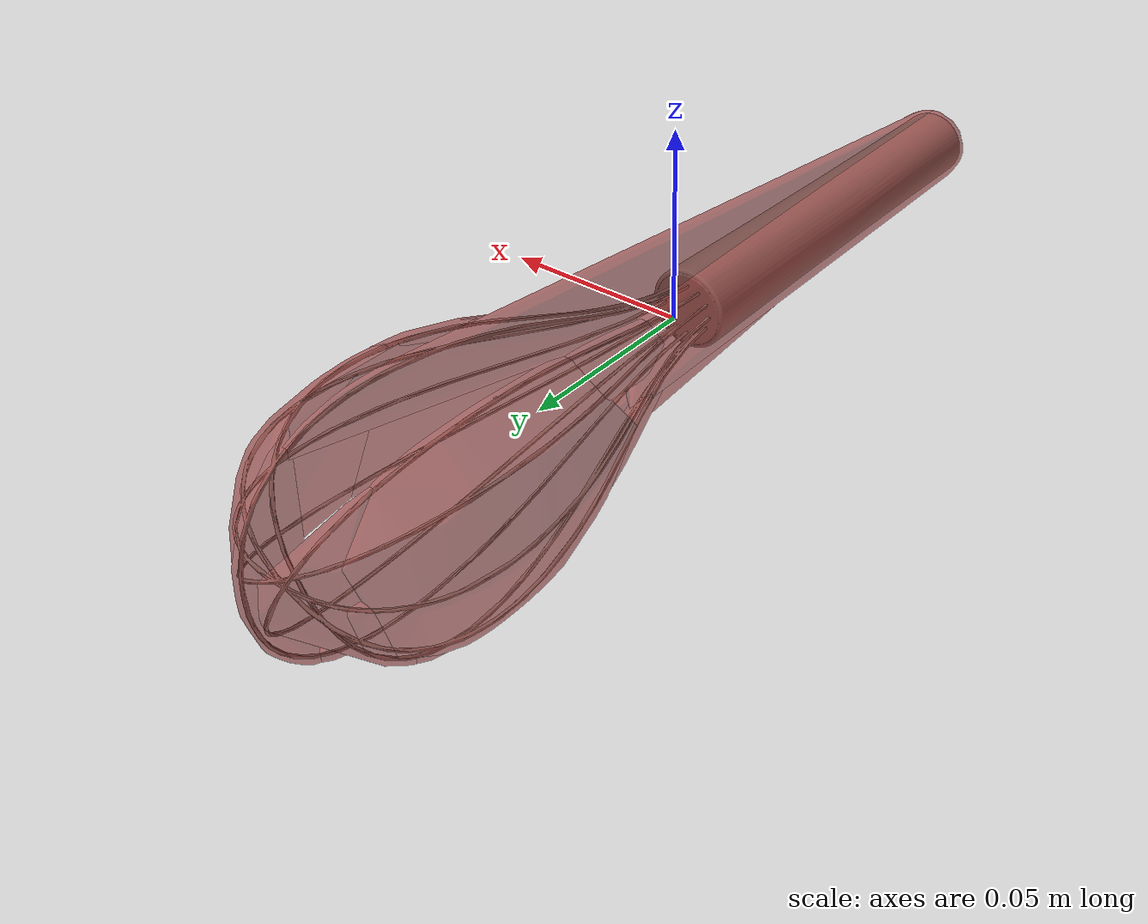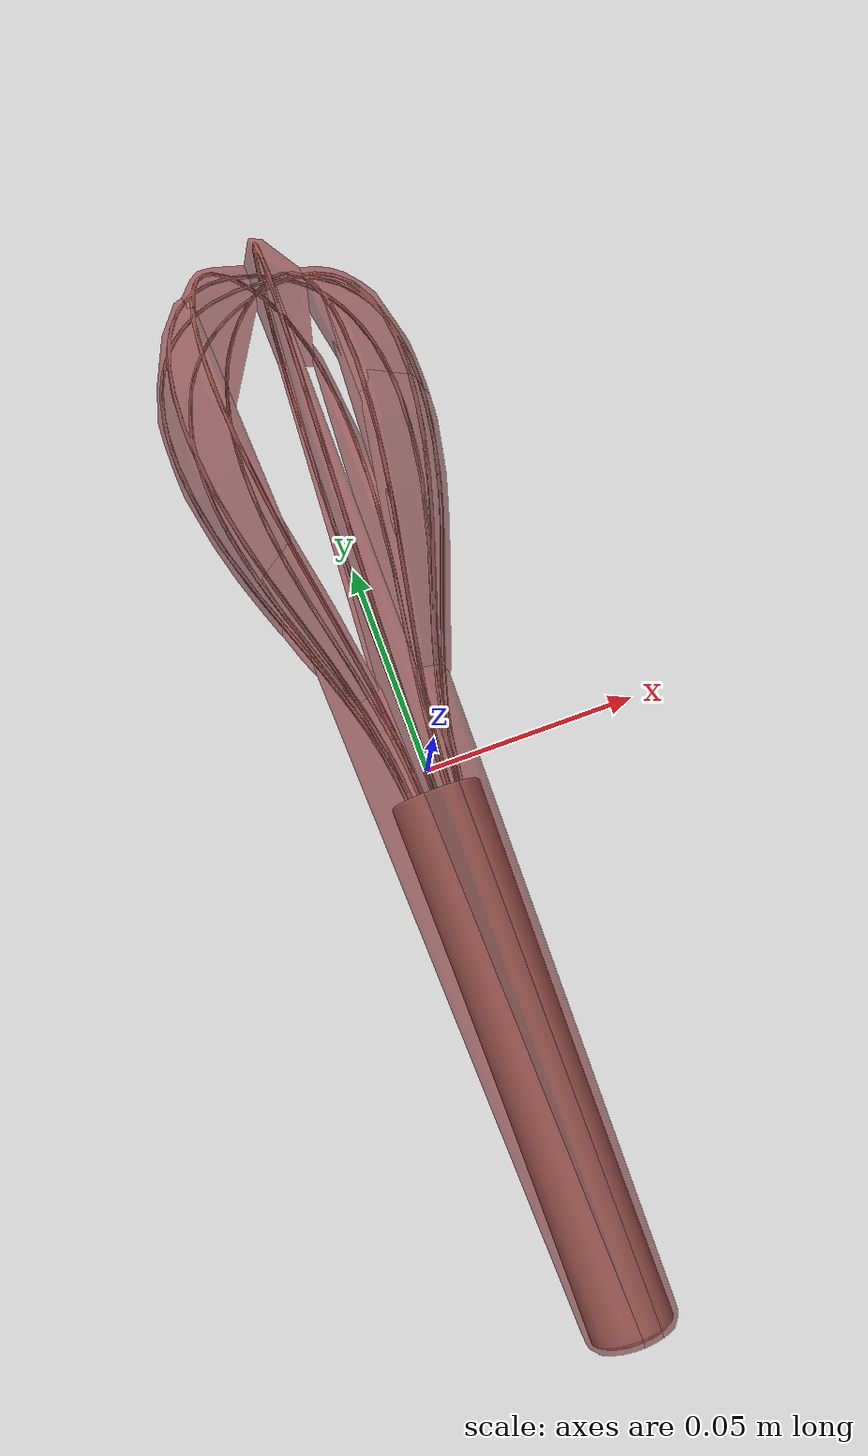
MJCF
<mujoco model="model">
  <option timestep="0.002" gravity="0.0 0.0 -9.81"/>
  <compiler angle="radian"/>
  <asset>
    <mesh file="visual/Whisk001.obj" name="Whisk001_vis"/>
    <mesh file="visual/Prop.obj" name="Whisk001_Prop_vis"/>
    <texture file="visual/T_BC001.png" name="Whisk001_material" type="2d"/>
    <material name="Whisk001_material" rgba="1 1 1 1.0" texture="Whisk001_material" shininess="0.1" specular="0.5"/>
    <texture file="visual/T_BC001.png" name="Whisk001_Prop_material" type="2d"/>
    <material name="Whisk001_Prop_material" rgba="1 1 1 1.0" texture="Whisk001_Prop_material" shininess="0.1" specular="5"/>
    <mesh file="collision/collision_mesh_collision_0.obj" name="Whisk001_collision_mesh_0"/>
    <mesh file="collision/collision_mesh_collision_1.obj" name="Whisk001_collision_mesh_1"/>
    <mesh file="collision/collision_mesh_collision_2.obj" name="Whisk001_collision_mesh_2"/>
    <mesh file="collision/collision_mesh_collision_3.obj" name="Whisk001_collision_mesh_3"/>
    <mesh file="collision/collision_mesh_collision_4.obj" name="Whisk001_collision_mesh_4"/>
    <mesh file="collision/collision_mesh_collision_5.obj" name="Whisk001_collision_mesh_5"/>
    <mesh file="collision/collision_mesh_collision_6.obj" name="Whisk001_collision_mesh_6"/>
    <mesh file="collision/collision_mesh_collision_7.obj" name="Whisk001_collision_mesh_7"/>
    <mesh file="collision/collision_mesh_collision_8.obj" name="Whisk001_collision_mesh_8"/>
    <mesh file="collision/collision_mesh_collision_9.obj" name="Whisk001_collision_mesh_9"/>
    <mesh file="collision/collision_mesh_collision_10.obj" name="Whisk001_collision_mesh_10"/>
    <mesh file="collision/collision_mesh_collision_11.obj" name="Whisk001_collision_mesh_11"/>
    <mesh file="collision/collision_mesh_collision_12.obj" name="Whisk001_collision_mesh_12"/>
    <mesh file="collision/collision_mesh_collision_13.obj" name="Whisk001_collision_mesh_13"/>
    <mesh file="collision/collision_mesh_collision_14.obj" name="Whisk001_collision_mesh_14"/>
  </asset>
  <default>
    <default class="visual">
      <geom conaffinity="0" contype="0" group="1" type="mesh"/>
    </default>
    <default class="collision">
      <geom group="0" rgba="0.5 0 0 0.5" density="1.0" solref="0.004 1" solimp="0.998 0.998 0.001"/>
    </default>
    <default class="spawn">
      <geom group="0" rgba="1 1 1 0.5" contype="0" conaffinity="0"/>
      <site group="0" rgba="1 1 1 0.5"/>
    </default>
    <default class="region">
      <geom group="1" conaffinity="0" contype="0" rgba="0 1 0 0" mass="0"/>
    </default>
  </default>
  <worldbody>
    <body>
      <body name="object">
        <geom mesh="Whisk001_vis" type="mesh" solimp="0.998 0.998 0.001" solref="0.001 1" friction="0.95 0.3 0.1" class="visual" material="Whisk001_material"/>
        <body name="Whisk001_Prop">
          <geom mesh="Whisk001_Prop_vis" type="mesh" solimp="0.998 0.998 0.001" solref="0.001 1" friction="0.95 0.3 0.1" class="visual" material="Whisk001_Prop_material"/>
        </body>
        <geom class="region" name="reg_bbox" type="box" pos="3.915000000000168e-06 -0.00042213499999999016 2.9894999999998534e-05" size="0.031763775 0.131573365 0.031825204999999995"/>
        <geom mesh="Whisk001_collision_mesh_0" type="mesh" class="collision"/>
        <geom mesh="Whisk001_collision_mesh_1" type="mesh" class="collision"/>
        <geom mesh="Whisk001_collision_mesh_2" type="mesh" class="collision"/>
        <geom mesh="Whisk001_collision_mesh_3" type="mesh" class="collision"/>
        <geom mesh="Whisk001_collision_mesh_4" type="mesh" class="collision"/>
        <geom mesh="Whisk001_collision_mesh_5" type="mesh" class="collision"/>
        <geom mesh="Whisk001_collision_mesh_6" type="mesh" class="collision"/>
        <geom mesh="Whisk001_collision_mesh_7" type="mesh" class="collision"/>
        <geom mesh="Whisk001_collision_mesh_8" type="mesh" class="collision"/>
        <geom mesh="Whisk001_collision_mesh_9" type="mesh" class="collision"/>
        <geom mesh="Whisk001_collision_mesh_10" type="mesh" class="collision"/>
        <geom mesh="Whisk001_collision_mesh_11" type="mesh" class="collision"/>
        <geom mesh="Whisk001_collision_mesh_12" type="mesh" class="collision"/>
        <geom mesh="Whisk001_collision_mesh_13" type="mesh" class="collision"/>
        <geom mesh="Whisk001_collision_mesh_14" type="mesh" class="collision"/>
      </body>
    </body>
  </worldbody>
  <actuator/>
</mujoco>
